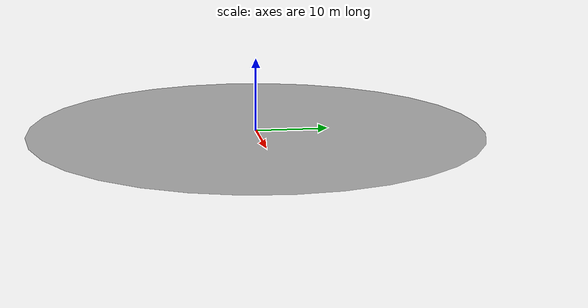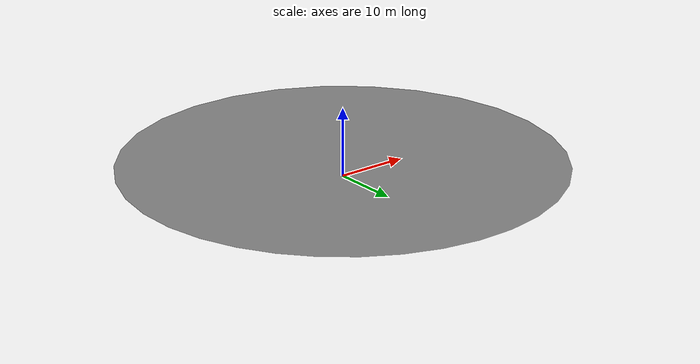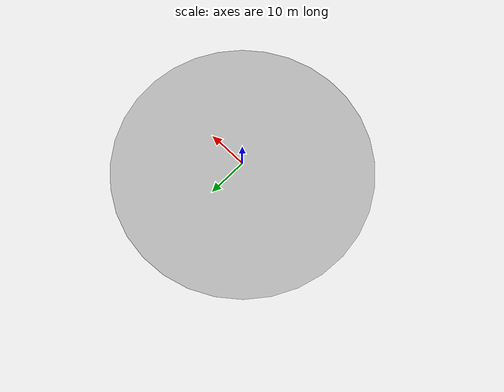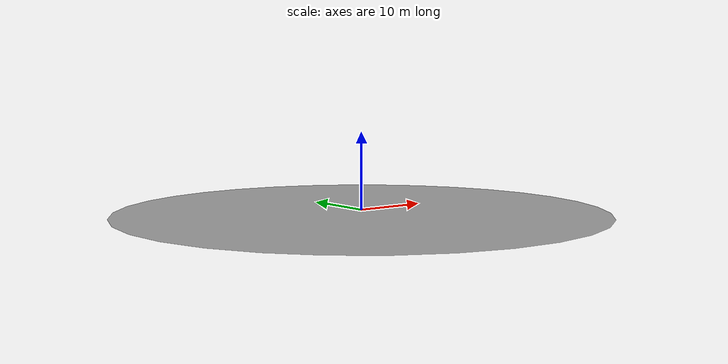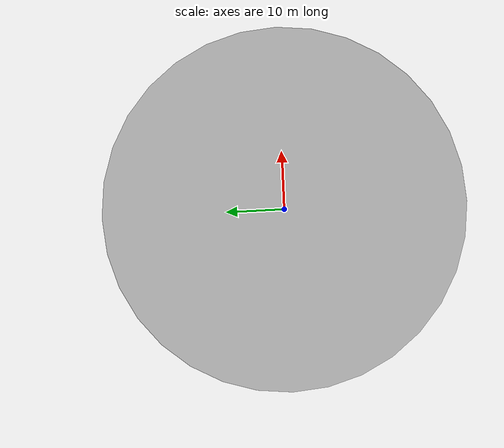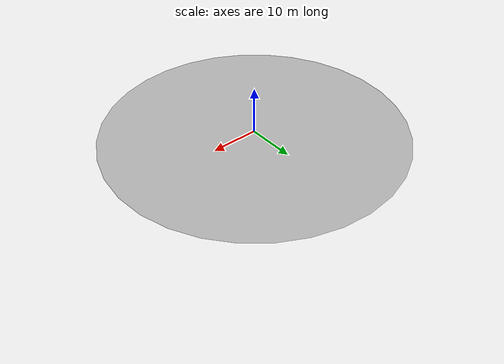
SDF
<?xml version='0.5'?>
<sdf version='1.6'>
  <model name='loop_freeway'>
    <link name='link_1'>
         <visual name='visual'>
        <pose frame=''>0 0 0 0 -0 0</pose>
        <geometry>
          <mesh>
            <uri>model://loop_freeway/meshes/loop_hq.dae</uri>
            <scale>1.0 1.0 1.0</scale>
          </mesh>
        </geometry>
        <cast_shadows>0</cast_shadows>
        <transparency>0</transparency>
      </visual>
    </link>

    <static>1</static>
    <allow_auto_disable>1</allow_auto_disable>
  </model>
</sdf>
